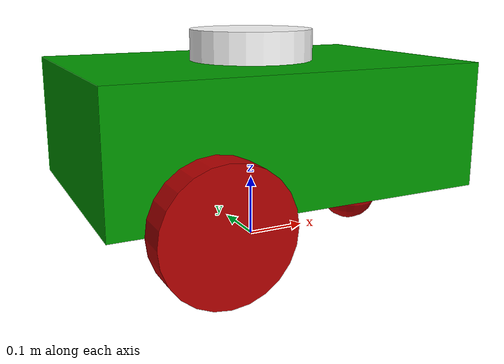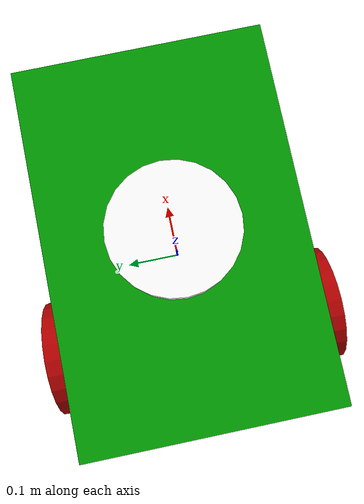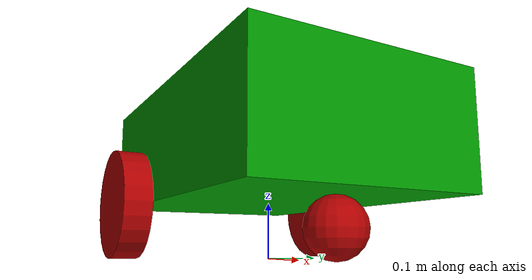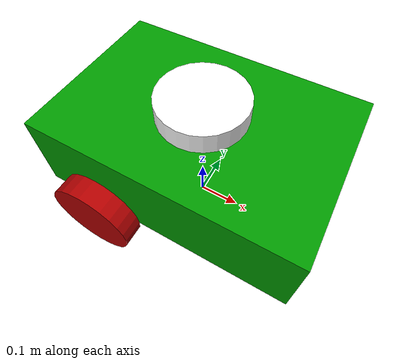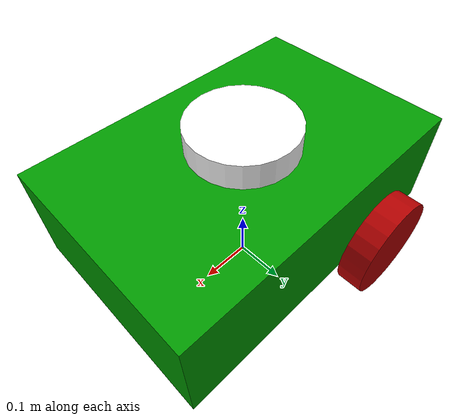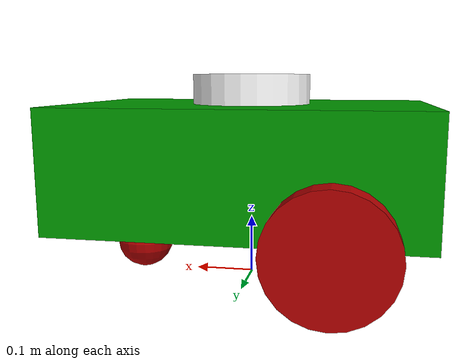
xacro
<?xml version="1.0"?>
<robot xmlns:xacro="http://www.ros.org/wiki/xacro" name="my_robot">

  <!-- ================= PARAMETERS ================= -->
  <!-- xacro:property name="pi" value="3.14159265359"/ -->

  <!-- Base dimensions -->
  <xacro:property name="base_length" value="0.6"/>
  <xacro:property name="base_width"  value="0.4"/>
  <xacro:property name="base_height" value="0.2"/>
  <xacro:property name="base_mass"   value="8.0"/>

  <!-- Wheel -->
  <xacro:property name="wheel_radius" value="0.1"/>
  <xacro:property name="wheel_width"  value="0.05"/>
  <xacro:property name="wheel_mass"   value="1.0"/>

  <!-- Lidar -->
  <xacro:property name="lidar_radius" value="0.1"/>
  <xacro:property name="lidar_length" value="0.05"/>
  <xacro:property name="lidar_mass"   value="0.5"/>

  <!-- Caster -->
  <xacro:property name="caster_radius" value="0.05"/>
  <xacro:property name="caster_mass"   value="0.3"/>

  <!-- ================= MATERIALS ================= -->
  <material name="green">
    <color rgba="0 0.6 0 1"/>
  </material>

  <material name="white">
    <color rgba="1 1 1 1"/>
  </material>

  <material name="red">
    <color rgba="0.7 0 0 1"/>
  </material>

  <!-- ================= BASE FOOTPRINT ================= -->
  <link name="base_footprint"/>

  <joint name="base_joint" type="fixed">
    <parent link="base_footprint"/>
    <child link="base_link"/>
    <origin xyz="0 0 0.1" rpy="0 0 0"/>
  </joint>

  <!-- ================= BASE LINK ================= -->
  <link name="base_link">

    <visual>
      <geometry>
        <box size="${base_length} ${base_width} ${base_height}"/>
      </geometry>
      <origin xyz="0 0 0.1" rpy="0 0 0"/>
      <material name="green"/>
    </visual>

    <collision>
      <geometry>
        <box size="${base_length} ${base_width} ${base_height}"/>
      </geometry>
      <origin xyz="0 0 0.1" rpy="0 0 0"/>
    </collision>

    <inertial>
      <origin xyz="0 0 0.1" rpy="0 0 0"/>
      <mass value="${base_mass}"/>

      <!-- Box inertia -->
      <inertia
        ixx="${(1.0/12.0)*base_mass*(base_width*base_width + base_height*base_height)}"
        ixy="0"
        ixz="0"
        iyy="${(1.0/12.0)*base_mass*(base_length*base_length + base_height*base_height)}"
        iyz="0"
        izz="${(1.0/12.0)*base_mass*(base_length*base_length + base_width*base_width)}"/>
    </inertial>

  </link>

  <!-- ================= LIDAR ================= -->
  <link name="lidar">

    <visual>
      <geometry>
        <cylinder radius="${lidar_radius}" length="${lidar_length}"/>
      </geometry>
      <material name="white"/>
    </visual>

    <collision>
      <geometry>
        <cylinder radius="${lidar_radius}" length="${lidar_length}"/>
      </geometry>
    </collision>

    <inertial>
      <mass value="${lidar_mass}"/>
      <inertia
        ixx="${(1.0/12.0)*lidar_mass*(3*lidar_radius*lidar_radius + lidar_length*lidar_length)}"
        ixy="0"
        ixz="0"
        iyy="${(1.0/12.0)*lidar_mass*(3*lidar_radius*lidar_radius + lidar_length*lidar_length)}"
        iyz="0"
        izz="${0.5*lidar_mass*lidar_radius*lidar_radius}"/>
    </inertial>

  </link>

  <joint name="base_lidar_joint" type="fixed">
    <parent link="base_link"/>
    <child link="lidar"/>
    <origin xyz="0 0 0.225" rpy="0 0 0"/>
  </joint>

  <!-- ================= LEFT WHEEL ================= -->
  <link name="left_wheel">

    <visual>
      <geometry>
        <cylinder radius="${wheel_radius}" length="${wheel_width}"/>
      </geometry>
      <origin xyz="0 0 0" rpy="1.57 0 0"/>
      <material name="red"/>
    </visual>

    <collision>
      <geometry>
        <cylinder radius="${wheel_radius}" length="${wheel_width}"/>
      </geometry>
      <origin xyz="0 0 0" rpy="1.57 0 0"/>
    </collision>

    <inertial>
      <mass value="${wheel_mass}"/>
      <inertia
        ixx="${(1.0/12.0)*wheel_mass*(3*wheel_radius*wheel_radius + wheel_width*wheel_width)}"
        ixy="0"
        ixz="0"
        iyy="${0.5*wheel_mass*wheel_radius*wheel_radius}"
        iyz="0"
        izz="${(1.0/12.0)*wheel_mass*(3*wheel_radius*wheel_radius + wheel_width*wheel_width)}"/>
    </inertial>

  </link>

  <joint name="base_left_wheel_joint" type="continuous">
    <parent link="base_link"/>
    <child link="left_wheel"/>
    <origin xyz="-0.15 0.225 0" rpy="0 0 0"/>
    <axis xyz="0 1 0"/>
  </joint>

  <!-- ================= RIGHT WHEEL ================= -->
  <link name="right_wheel">

    <visual>
      <geometry>
        <cylinder radius="${wheel_radius}" length="${wheel_width}"/>
      </geometry>
      <origin xyz="0 0 0" rpy="1.57 0 0"/>
      <material name="red"/>
    </visual>

    <collision>
      <geometry>
        <cylinder radius="${wheel_radius}" length="${wheel_width}"/>
      </geometry>
      <origin xyz="0 0 0" rpy="1.57 0 0"/>
    </collision>

    <inertial>
      <mass value="${wheel_mass}"/>
      <inertia
        ixx="${(1.0/12.0)*wheel_mass*(3*wheel_radius*wheel_radius + wheel_width*wheel_width)}"
        ixy="0"
        ixz="0"
        iyy="${0.5*wheel_mass*wheel_radius*wheel_radius}"
        iyz="0"
        izz="${(1.0/12.0)*wheel_mass*(3*wheel_radius*wheel_radius + wheel_width*wheel_width)}"/>
    </inertial>

  </link>

  <joint name="base_right_wheel_joint" type="continuous">
    <parent link="base_link"/>
    <child link="right_wheel"/>
    <origin xyz="-0.15 -0.225 0" rpy="0 0 0"/>
    <axis xyz="0 1 0"/>
  </joint>

  <!-- ================= CASTER ================= -->
  <link name="caster_wheel">

    <visual>
      <geometry>
        <sphere radius="${caster_radius}"/>
      </geometry>
      <material name="red"/>
    </visual>

    <collision>
      <geometry>
        <sphere radius="${caster_radius}"/>
      </geometry>
    </collision>

    <inertial>
      <mass value="${caster_mass}"/>
      <inertia
        ixx="${0.4*caster_mass*caster_radius*caster_radius}"
        ixy="0"
        ixz="0"
        iyy="${0.4*caster_mass*caster_radius*caster_radius}"
        iyz="0"
        izz="${0.4*caster_mass*caster_radius*caster_radius}"/>
    </inertial>

  </link>

  <joint name="base_caster_wheel_joint" type="fixed">
    <parent link="base_link"/>
    <child link="caster_wheel"/>
    <origin xyz="0.2 0 -0.05" rpy="0 0 0"/>
  </joint>

  <!-- ================= GAZEBO COLORS ================= -->
  <gazebo reference="base_link">
    <material>Gazebo/Green</material>
  </gazebo>

  <gazebo reference="left_wheel">
    <material>Gazebo/Red</material>
  </gazebo>

  <gazebo reference="right_wheel">
    <material>Gazebo/Red</material>
  </gazebo>

  <gazebo reference="caster_wheel">
    <material>Gazebo/Red</material>
  </gazebo>

  <!-- ================= DIFF DRIVE PLUGIN ================= -->
<gazebo>
    <plugin
      filename="gz-sim-diff-drive-system"
      name="gz::sim::systems::DiffDrive">

      <left_joint>base_left_wheel_joint</left_joint>
      <right_joint>base_right_wheel_joint</right_joint>
      <wheel_separation>0.45</wheel_separation>
      <wheel_radius>${wheel_radius}</wheel_radius> <max_wheel_torque>20</max_wheel_torque>
      <max_wheel_acceleration>1.0</max_wheel_acceleration>

      <topic>cmd_vel</topic>
      <odom_topic>odom</odom_topic>
      <tf_topic>/tf</tf_topic>

      <frame_id>odom</frame_id>
      <child_frame_id>base_footprint</child_frame_id>

      <publish_odom>true</publish_odom>
      <publish_odom_tf>true</publish_odom_tf>
      <publish_wheel_tf>true</publish_wheel_tf>
    </plugin>
  </gazebo>
</robot>
